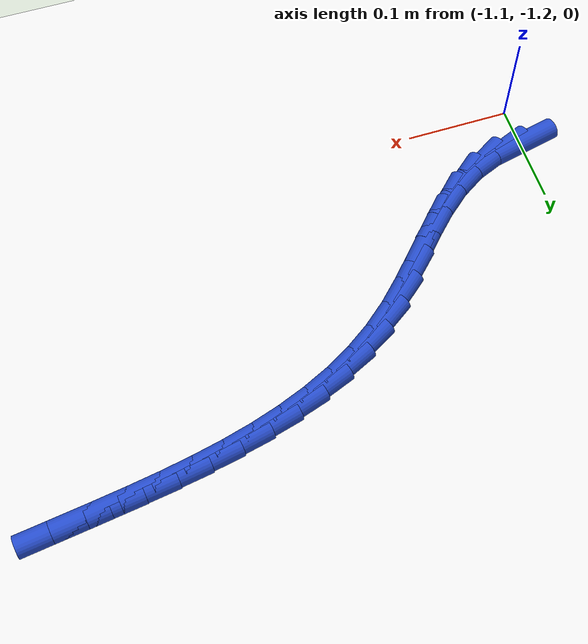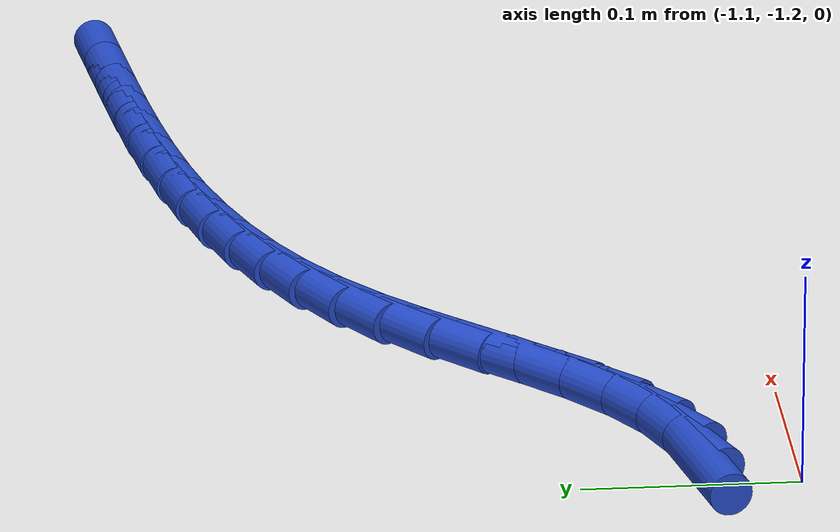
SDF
<sdf version="1.6">
 <world name="default">
  <model name="ground_plane">
   <static>1</static>
   <link name="link">
    <collision name="collision">
     <geometry><plane><normal>0 0 1</normal><size>100 100</size></plane></geometry>
     <surface><friction><ode><mu>100</mu><mu2>50</mu2></ode></friction></surface>
    </collision>
    <visual name="visual">
     <cast_shadows>0</cast_shadows>
     <geometry><plane><normal>0 0 1</normal><size>100 100</size></plane></geometry>
     <material>
      <script><uri>file://media/materials/scripts/gazebo.material</uri><name>Gazebo/WhiteGlow</name></script>
     </material>
    </visual>
   </link>
  </model>
  <model name="line">
   <link name="link_178">
    <pose>-1.0935267073607422 -1.1552272239088088 0.01 0 1.57 0.21770372555790685</pose>
    <collision name="collision">
     <geometry><cylinder><radius>0.01</radius><length>0.08</length></cylinder></geometry>
    </collision>
    <visual name="visual">
     <material>
      <script><name>Gazebo/Blue</name><uri>file://media/materials/scripts/gazebo.material</uri></script>
     </material>
     <geometry><cylinder><radius>0.01</radius><length>0.08</length></cylinder></geometry>
    </visual>
   </link>
   <link name="link_179">
    <pose>-1.067128778470945 -1.1493877498430887 0.01 0 1.57 0.38812212192744877</pose>
    <collision name="collision">
     <geometry><cylinder><radius>0.01</radius><length>0.08</length></cylinder></geometry>
    </collision>
    <visual name="visual">
     <material>
      <script><name>Gazebo/Blue</name><uri>file://media/materials/scripts/gazebo.material</uri></script>
     </material>
     <geometry><cylinder><radius>0.01</radius><length>0.08</length></cylinder></geometry>
    </visual>
   </link>
   <link name="link_180">
    <pose>-1.0424491469106039 -1.1392972003948783 0.01 0 1.57 0.5644611576359483</pose>
    <collision name="collision">
     <geometry><cylinder><radius>0.01</radius><length>0.08</length></cylinder></geometry>
    </collision>
    <visual name="visual">
     <material>
      <script><name>Gazebo/Blue</name><uri>file://media/materials/scripts/gazebo.material</uri></script>
     </material>
     <geometry><cylinder><radius>0.01</radius><length>0.08</length></cylinder></geometry>
    </visual>
   </link>
   <link name="link_181">
    <pose>-1.0196719440614084 -1.124875092532557 0.01 0 1.57 0.6971746652882769</pose>
    <collision name="collision">
     <geometry><cylinder><radius>0.01</radius><length>0.08</length></cylinder></geometry>
    </collision>
    <visual name="visual">
     <material>
      <script><name>Gazebo/Blue</name><uri>file://media/materials/scripts/gazebo.material</uri></script>
     </material>
     <geometry><cylinder><radius>0.01</radius><length>0.08</length></cylinder></geometry>
    </visual>
   </link>
   <link name="link_182">
    <pose>-0.9983845449547748 -1.1070475329894824 0.01 0 1.57 0.7800593427081013</pose>
    <collision name="collision">
     <geometry><cylinder><radius>0.01</radius><length>0.08</length></cylinder></geometry>
    </collision>
    <visual name="visual">
     <material>
      <script><name>Gazebo/Blue</name><uri>file://media/materials/scripts/gazebo.material</uri></script>
     </material>
     <geometry><cylinder><radius>0.01</radius><length>0.08</length></cylinder></geometry>
    </visual>
   </link>
   <link name="link_183">
    <pose>-0.9780579866028454 -1.0869368637957608 0.01 0 1.57 0.8188296201808906</pose>
    <collision name="collision">
     <geometry><cylinder><radius>0.01</radius><length>0.08</length></cylinder></geometry>
    </collision>
    <visual name="visual">
     <material>
      <script><name>Gazebo/Blue</name><uri>file://media/materials/scripts/gazebo.material</uri></script>
     </material>
     <geometry><cylinder><radius>0.01</radius><length>0.08</length></cylinder></geometry>
    </visual>
   </link>
   <link name="link_184">
    <pose>-0.9581633060177605 -1.0656654269814965 0.01 0 1.57 0.817301248967683</pose>
    <collision name="collision">
     <geometry><cylinder><radius>0.01</radius><length>0.08</length></cylinder></geometry>
    </collision>
    <visual name="visual">
     <material>
      <script><name>Gazebo/Blue</name><uri>file://media/materials/scripts/gazebo.material</uri></script>
     </material>
     <geometry><cylinder><radius>0.01</radius><length>0.08</length></cylinder></geometry>
    </visual>
   </link>
   <link name="link_185">
    <pose>-0.9381715402116615 -1.0443555645767946 0.01 0 1.57 0.7758041390752117</pose>
    <collision name="collision">
     <geometry><cylinder><radius>0.01</radius><length>0.08</length></cylinder></geometry>
    </collision>
    <visual name="visual">
     <material>
      <script><name>Gazebo/Blue</name><uri>file://media/materials/scripts/gazebo.material</uri></script>
     </material>
     <geometry><cylinder><radius>0.01</radius><length>0.08</length></cylinder></geometry>
    </visual>
   </link>
   <link name="link_186">
    <pose>-0.9175537261966902 -1.0241296186117612 0.01 0 1.57 0.6945458485018767</pose>
    <collision name="collision">
     <geometry><cylinder><radius>0.01</radius><length>0.08</length></cylinder></geometry>
    </collision>
    <visual name="visual">
     <material>
      <script><name>Gazebo/Blue</name><uri>file://media/materials/scripts/gazebo.material</uri></script>
     </material>
     <geometry><cylinder><radius>0.01</radius><length>0.08</length></cylinder></geometry>
    </visual>
   </link>
   <link name="link_187">
    <pose>-0.8958208333156235 -1.006025959592583 0.01 0 1.57 0.6011468385055752</pose>
    <collision name="collision">
     <geometry><cylinder><radius>0.01</radius><length>0.08</length></cylinder></geometry>
    </collision>
    <visual name="visual">
     <material>
      <script><name>Gazebo/Blue</name><uri>file://media/materials/scripts/gazebo.material</uri></script>
     </material>
     <geometry><cylinder><radius>0.01</radius><length>0.08</length></cylinder></geometry>
    </visual>
   </link>
   <link name="link_188">
    <pose>-0.8728646658783075 -0.9902821209083295 0.01 0 1.57 0.5138860415055116</pose>
    <collision name="collision">
     <geometry><cylinder><radius>0.01</radius><length>0.08</length></cylinder></geometry>
    </collision>
    <visual name="visual">
     <material>
      <script><name>Gazebo/Blue</name><uri>file://media/materials/scripts/gazebo.material</uri></script>
     </material>
     <geometry><cylinder><radius>0.01</radius><length>0.08</length></cylinder></geometry>
    </visual>
   </link>
   <link name="link_189">
    <pose>-0.8487881770039327 -0.9766916226132162 0.01 0 1.57 0.43462726944572133</pose>
    <collision name="collision">
     <geometry><cylinder><radius>0.01</radius><length>0.08</length></cylinder></geometry>
    </collision>
    <visual name="visual">
     <material>
      <script><name>Gazebo/Blue</name><uri>file://media/materials/scripts/gazebo.material</uri></script>
     </material>
     <geometry><cylinder><radius>0.01</radius><length>0.08</length></cylinder></geometry>
    </visual>
   </link>
   <link name="link_190">
    <pose>-0.8236965681285345 -0.9650432568983773 0.01 0 1.57 0.364385179423202</pose>
    <collision name="collision">
     <geometry><cylinder><radius>0.01</radius><length>0.08</length></cylinder></geometry>
    </collision>
    <visual name="visual">
     <material>
      <script><name>Gazebo/Blue</name><uri>file://media/materials/scripts/gazebo.material</uri></script>
     </material>
     <geometry><cylinder><radius>0.01</radius><length>0.08</length></cylinder></geometry>
    </visual>
   </link>
   <link name="link_191">
    <pose>-0.7976950406881484 -0.9551258159549482 0.01 0 1.57 0.3035906846541525</pose>
    <collision name="collision">
     <geometry><cylinder><radius>0.01</radius><length>0.08</length></cylinder></geometry>
    </collision>
    <visual name="visual">
     <material>
      <script><name>Gazebo/Blue</name><uri>file://media/materials/scripts/gazebo.material</uri></script>
     </material>
     <geometry><cylinder><radius>0.01</radius><length>0.08</length></cylinder></geometry>
    </visual>
   </link>
   <link name="link_192">
    <pose>-0.7708887961188091 -0.9467280919740626 0.01 0 1.57 0.2522459133146604</pose>
    <collision name="collision">
     <geometry><cylinder><radius>0.01</radius><length>0.08</length></cylinder></geometry>
    </collision>
    <visual name="visual">
     <material>
      <script><name>Gazebo/Blue</name><uri>file://media/materials/scripts/gazebo.material</uri></script>
     </material>
     <geometry><cylinder><radius>0.01</radius><length>0.08</length></cylinder></geometry>
    </visual>
   </link>
   <link name="link_193">
    <pose>-0.7433830358565532 -0.9396388771468555 0.01 0 1.57 0.21008833079899414</pose>
    <collision name="collision">
     <geometry><cylinder><radius>0.01</radius><length>0.08</length></cylinder></geometry>
    </collision>
    <visual name="visual">
     <material>
      <script><name>Gazebo/Blue</name><uri>file://media/materials/scripts/gazebo.material</uri></script>
     </material>
     <geometry><cylinder><radius>0.01</radius><length>0.08</length></cylinder></geometry>
    </visual>
   </link>
   <link name="link_194">
    <pose>-0.715282961337416 -0.933646963664462 0.01 0 1.57 0.1767294629195202</pose>
    <collision name="collision">
     <geometry><cylinder><radius>0.01</radius><length>0.08</length></cylinder></geometry>
    </collision>
    <visual name="visual">
     <material>
      <script><name>Gazebo/Blue</name><uri>file://media/materials/scripts/gazebo.material</uri></script>
     </material>
     <geometry><cylinder><radius>0.01</radius><length>0.08</length></cylinder></geometry>
    </visual>
   </link>
   <link name="link_195">
    <pose>-0.6866937739974321 -0.928541143718016 0.01 0 1.57 0.15175687272335028</pose>
    <collision name="collision">
     <geometry><cylinder><radius>0.01</radius><length>0.08</length></cylinder></geometry>
    </collision>
    <visual name="visual">
     <material>
      <script><name>Gazebo/Blue</name><uri>file://media/materials/scripts/gazebo.material</uri></script>
     </material>
     <geometry><cylinder><radius>0.01</radius><length>0.08</length></cylinder></geometry>
    </visual>
   </link>
   <link name="link_196">
    <pose>-0.6577206752726377 -0.9241102094986525 0.01 0 1.57 0.13480181050126347</pose>
    <collision name="collision">
     <geometry><cylinder><radius>0.01</radius><length>0.08</length></cylinder></geometry>
    </collision>
    <visual name="visual">
     <material>
      <script><name>Gazebo/Blue</name><uri>file://media/materials/scripts/gazebo.material</uri></script>
     </material>
     <geometry><cylinder><radius>0.01</radius><length>0.08</length></cylinder></geometry>
    </visual>
   </link>
   <link name="link_197">
    <pose>-0.6284688665990674 -0.9201429531975059 0.01 0 1.57 0.1255802182023889</pose>
    <collision name="collision">
     <geometry><cylinder><radius>0.01</radius><length>0.08</length></cylinder></geometry>
    </collision>
    <visual name="visual">
     <material>
      <script><name>Gazebo/Blue</name><uri>file://media/materials/scripts/gazebo.material</uri></script>
     </material>
     <geometry><cylinder><radius>0.01</radius><length>0.08</length></cylinder></geometry>
    </visual>
   </link>
   <link name="link_198">
    <pose>-0.5990435494127576 -0.9164281670057114 0.01 0 1.57 0.12391499781095795</pose>
    <collision name="collision">
     <geometry><cylinder><radius>0.01</radius><length>0.08</length></cylinder></geometry>
    </collision>
    <visual name="visual">
     <material>
      <script><name>Gazebo/Blue</name><uri>file://media/materials/scripts/gazebo.material</uri></script>
     </material>
     <geometry><cylinder><radius>0.01</radius><length>0.08</length></cylinder></geometry>
    </visual>
   </link>
  </model>
 </world>
</sdf>
